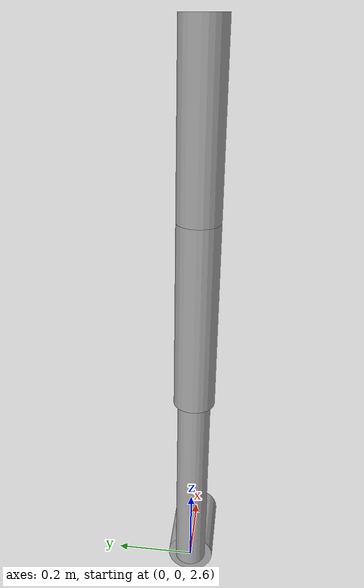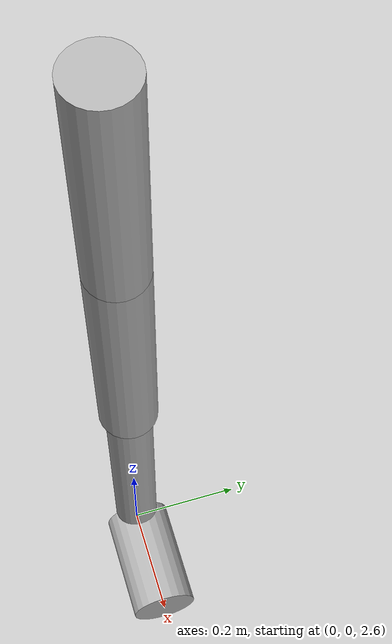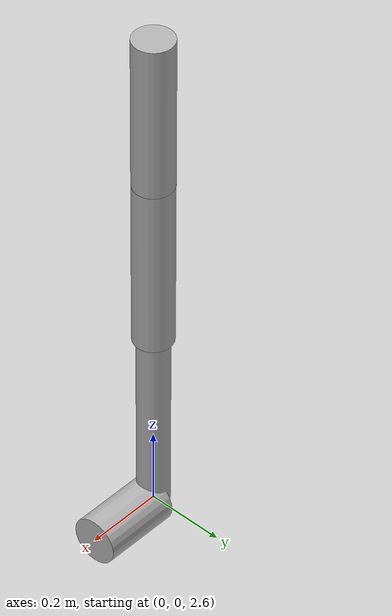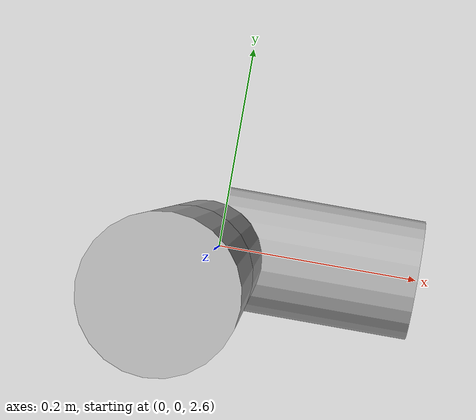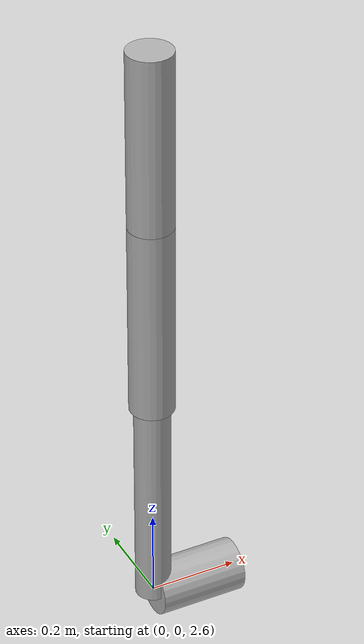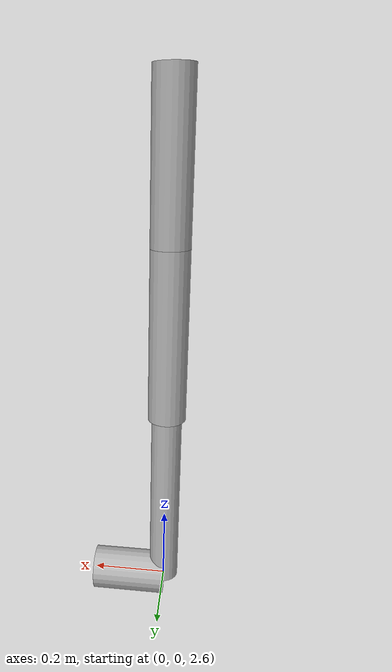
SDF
<?xml version="1.0" ?>
<sdf version="1.8">
  <world name="walker2d_v5">
    <physics name="10ms" type="ignored">
      <max_step_size>0.01</max_step_size>
      <real_time_update_rate>0</real_time_update_rate>
    </physics>
    <plugin filename="gz-sim-physics-system"           name="gz::sim::systems::Physics"/>
    <plugin filename="gz-sim-contact-system"           name="gz::sim::systems::Contact"/>
    <plugin filename="gz-sim-sensors-system"           name="gz::sim::systems::Sensors">
      <render_engine>ogre2</render_engine>
    </plugin>
    <plugin filename="gz-sim-scene-broadcaster-system" name="gz::sim::systems::SceneBroadcaster"/>
    <plugin filename="gz-sim-user-commands-system"     name="gz::sim::systems::UserCommands"/>

    <plugin
      filename="gz-sim-python-system-loader-system"
      name="gz::sim::systems::PythonSystemLoader">
      <module_name>walker2d_v5_learner</module_name>
      <agent_name>walker2d_v5</agent_name>
      <frame_skip>5</frame_skip>
    </plugin>

    <light name="sun" type="directional">
      <cast_shadows>true</cast_shadows>
      <pose>0 0 10 0 0 0</pose>
      <diffuse>0.8 0.8 0.8 1</diffuse>
      <specular>0.2 0.2 0.2 1</specular>
      <direction>-0.5 0.1 -0.9</direction>
    </light>

    <model name="ground_plane">
      <static>true</static>
      <link name="link">
        <collision name="collision">
          <geometry><plane><normal>0 0 1</normal><size>100 100</size></plane></geometry>
        </collision>
        <visual name="visual">
          <geometry><plane><normal>0 0 1</normal><size>100 100</size></plane></geometry>
          <material>
            <ambient>0.8 0.8 0.8 1</ambient>
            <diffuse>0.8 0.8 0.8 1</diffuse>
            <specular>0.8 0.8 0.8 1</specular>
          </material>
        </visual>
      </link>
    </model>

    <model name="walker2d_v5">
      <pose>0 0 1.25 0 0 0</pose>
      <include merge="true">
        <uri>package://gazebo_gymnasium_resources/models/walker2d_v5</uri>
      </include>
    </model>
  </world>
</sdf>

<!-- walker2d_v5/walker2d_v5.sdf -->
<sdf version='1.11'>
  <model name='walker2d_v5'>
    <link name='link1_1'>
      <inertial>
        <pose>0 0 0 0 0 0</pose>
        <mass>1.9999999999999999e-06</mass>
        <inertia>
          <ixx>2.0000000000000001e-09</ixx>
          <ixy>0</ixy>
          <ixz>0</ixz>
          <iyy>2.0000000000000001e-09</iyy>
          <iyz>0</iyz>
          <izz>2.0000000000000001e-09</izz>
        </inertia>
      </inertial>
    </link>
    <joint name='rootx' type='prismatic'>
      <pose relative_to='link1_1'>0 0 0 0 0 0</pose>
      <parent>link1_1</parent>
      <child>link1_2</child>
      <axis>
        <xyz>1 0 0</xyz>
        <limit>
          <lower>0</lower>
          <upper>1</upper>
          <effort>0</effort>
          <velocity>0</velocity>
        </limit>
        <dynamics>
          <damping>1</damping>
          <friction>0.0001</friction>
          <spring_reference>0</spring_reference>
          <spring_stiffness>0</spring_stiffness>
        </dynamics>
      </axis>
    </joint>
    <link name='link1_2'>
      <pose relative_to='rootx'>0 0 0 0 0 0</pose>
      <inertial>
        <pose>0 0 0 0 0 0</pose>
        <mass>9.9999999999999995e-07</mass>
        <inertia>
          <ixx>1.0000000000000001e-09</ixx>
          <ixy>0</ixy>
          <ixz>0</ixz>
          <iyy>1.0000000000000001e-09</iyy>
          <iyz>0</iyz>
          <izz>1.0000000000000001e-09</izz>
        </inertia>
      </inertial>
    </link>
    <joint name='rootz' type='prismatic'>
      <pose relative_to='link1_2'>0 0 0 0 0 0</pose>
      <parent>link1_2</parent>
      <child>link1_3</child>
      <axis>
        <xyz>0 0 1</xyz>
        <limit>
          <lower>0</lower>
          <upper>1</upper>
          <effort>0</effort>
          <velocity>0</velocity>
        </limit>
        <dynamics>
          <damping>1</damping>
          <friction>0.0001</friction>
          <spring_reference>0</spring_reference>
          <spring_stiffness>0</spring_stiffness>
        </dynamics>
      </axis>
    </joint>
    <link name='link1_3'>
      <pose relative_to='rootz'>0 0 0 0 0 0</pose>
      <inertial>
        <pose>0 0 0 0 0 0</pose>
        <mass>9.9999999999999995e-07</mass>
        <inertia>
          <ixx>1.0000000000000001e-09</ixx>
          <ixy>0</ixy>
          <ixz>0</ixz>
          <iyy>1.0000000000000001e-09</iyy>
          <iyz>0</iyz>
          <izz>1.0000000000000001e-09</izz>
        </inertia>
      </inertial>
    </link>
    <joint name='rooty' type='revolute'>
      <pose relative_to='link1_3'>0 0 1.25 0 0 0</pose>
      <parent>link1_3</parent>
      <child>link1_4</child>
      <axis>
        <xyz>0 1 0</xyz>
        <limit>
          <lower>-inf</lower>
          <upper>inf</upper>
        </limit>
        <dynamics>
          <damping>1</damping>
          <friction>0.0001</friction>
          <spring_reference>0</spring_reference>
          <spring_stiffness>0</spring_stiffness>
        </dynamics>
      </axis>
    </joint>
    <link name='link1_4'>
      <pose relative_to='rooty'>0 0 0 0 0 0</pose>
      <inertial>
        <pose>0 0 1.2499996589536531 0 0 0</pose>
        <mass>3.6651910000000001</mass>
        <inertia>
          <ixx>0.079411563499575344</ixx>
          <ixy>0</ixy>
          <ixz>0</ixz>
          <iyy>0.079411563499575344</iyy>
          <iyz>0</iyz>
          <izz>0.0061100010000000003</izz>
        </inertia>
      </inertial>
      <collision name='link1_4_fixed_joint_lump__torso_collision'>
        <pose>0 0 1.25 0 0 0</pose>
        <geometry>
          <cylinder>
            <length>0.40000000000000002</length>
            <radius>0.050000000000000003</radius>
          </cylinder>
        </geometry>
      </collision>
      <visual name='link1_4_fixed_joint_lump__torso_visual'>
        <pose>0 0 1.25 0 0 0</pose>
        <geometry>
          <cylinder>
            <length>0.40000000000000002</length>
            <radius>0.050000000000000003</radius>
          </cylinder>
        </geometry>
              <material>
          <ambient>0.5 0.5 0.5 1</ambient>
          <diffuse>0.7 0.7 0.7 1</diffuse>
          <specular>0.1 0.1 0.1 1</specular>
        </material>
      </visual>
    </link>
    <joint name='thigh_joint' type='revolute'>
      <pose relative_to='link1_4'>0 0 1.05 0 0 0</pose>
      <parent>link1_4</parent>
      <child>link1_6</child>
      <axis>
        <xyz>0 -1 0</xyz>
        <limit>
          <lower>-2.6179899999999998</lower>
          <upper>0</upper>
          <effort>0</effort>
          <velocity>0</velocity>
        </limit>
        <dynamics>
          <damping>1</damping>
          <friction>0.0001</friction>
          <spring_reference>0</spring_reference>
          <spring_stiffness>0</spring_stiffness>
        </dynamics>
      </axis>
    </joint>
    <link name='link1_6'>
      <pose relative_to='thigh_joint'>0 0 0 0 0 0</pose>
      <inertial>
        <pose>0 0 0 0 0 0</pose>
        <mass>4.0578910000000006</mass>
        <inertia>
          <ixx>0.105670001</ixx>
          <ixy>0</ixy>
          <ixz>0</ixz>
          <iyy>0.105670001</iyy>
          <iyz>0</iyz>
          <izz>0.0067600010000000007</izz>
        </inertia>
      </inertial>
      <collision name='link1_6_fixed_joint_lump__thigh_collision'>
        <pose>0 0 -0.22500000000000001 0 0 0</pose>
        <geometry>
          <cylinder>
            <length>0.45000000000000001</length>
            <radius>0.050000000000000003</radius>
          </cylinder>
        </geometry>
      </collision>
      <visual name='link1_6_fixed_joint_lump__thigh_visual'>
        <pose>0 0 -0.22500000000000001 0 0 0</pose>
        <geometry>
          <cylinder>
            <length>0.45000000000000001</length>
            <radius>0.050000000000000003</radius>
          </cylinder>
        </geometry>
              <material>
          <ambient>0.5 0.5 0.5 1</ambient>
          <diffuse>0.7 0.7 0.7 1</diffuse>
          <specular>0.1 0.1 0.1 1</specular>
        </material>
      </visual>
    </link>
    <joint name='leg_joint' type='revolute'>
      <pose relative_to='link1_6'>0 0 -0.45000000000000001 0 0 0</pose>
      <parent>link1_6</parent>
      <child>link1_8</child>
      <axis>
        <xyz>0 -1 0</xyz>
        <limit>
          <lower>-2.6179899999999998</lower>
          <upper>0</upper>
          <effort>0</effort>
          <velocity>0</velocity>
        </limit>
        <dynamics>
          <damping>1</damping>
          <friction>0.0001</friction>
          <spring_reference>0</spring_reference>
          <spring_stiffness>0</spring_stiffness>
        </dynamics>
      </axis>
    </joint>
    <link name='link1_8'>
      <pose relative_to='leg_joint'>0 0 0 0 0 0</pose>
      <inertial>
        <pose>0 0 -0.2499999101159468 0 0 0</pose>
        <mass>2.781361</mass>
        <inertia>
          <ixx>0.079450063499977547</ixx>
          <ixy>0</ixy>
          <ixz>0</ixz>
          <iyy>0.079450063499977547</iyy>
          <iyz>0</iyz>
          <izz>0.0029700009999999999</izz>
        </inertia>
      </inertial>
      <collision name='link1_8_fixed_joint_lump__leg_collision'>
        <pose>0 0 -0.25 0 0 0</pose>
        <geometry>
          <cylinder>
            <length>0.5</length>
            <radius>0.040000000000000001</radius>
          </cylinder>
        </geometry>
      </collision>
      <visual name='link1_8_fixed_joint_lump__leg_visual'>
        <pose>0 0 -0.25 0 0 0</pose>
        <geometry>
          <cylinder>
            <length>0.5</length>
            <radius>0.040000000000000001</radius>
          </cylinder>
        </geometry>
              <material>
          <ambient>0.5 0.5 0.5 1</ambient>
          <diffuse>0.7 0.7 0.7 1</diffuse>
          <specular>0.1 0.1 0.1 1</specular>
        </material>
      </visual>
    </link>
    <joint name='foot_joint' type='revolute'>
      <pose relative_to='link1_8'>0 0 -0.5 0 0 0</pose>
      <parent>link1_8</parent>
      <child>link1_10</child>
      <axis>
        <xyz>0 -1 0</xyz>
        <limit>
          <lower>-0.78539999999999999</lower>
          <upper>0.78539999999999999</upper>
          <effort>0</effort>
          <velocity>0</velocity>
        </limit>
        <dynamics>
          <damping>1</damping>
          <friction>0.0001</friction>
          <spring_reference>0</spring_reference>
          <spring_stiffness>0</spring_stiffness>
        </dynamics>
      </axis>
    </joint>
    <link name='link1_10'>
      <pose relative_to='foot_joint'>0 0 0 0 0 0</pose>
      <inertial>
        <pose>0.19999993684338829 0 -0.09999996842169416 0 0 0</pose>
        <mass>3.166731</mass>
        <inertia>
          <ixx>0.0076000109999968526</ixx>
          <ixy>0</ixy>
          <ixz>1.9999993702835009e-08</ixz>
          <iyy>0.030820050999984219</iyy>
          <iyz>0</iyz>
          <izz>0.030820040999987391</izz>
        </inertia>
      </inertial>
      <collision name='link1_10_fixed_joint_lump__foot_collision'>
        <pose>0.10000000000000001 0 0 0 -1.5707963267948966 0</pose>
        <geometry>
          <cylinder>
            <length>0.20000000000000001</length>
            <radius>0.059999999999999998</radius>
          </cylinder>
        </geometry>
      </collision>
      <visual name='link1_10_fixed_joint_lump__foot_visual'>
        <pose>0.10000000000000001 0 0 0 -1.5707963267948966 0</pose>
        <geometry>
          <cylinder>
            <length>0.20000000000000001</length>
            <radius>0.059999999999999998</radius>
          </cylinder>
        </geometry>
              <material>
          <ambient>0.5 0.5 0.5 1</ambient>
          <diffuse>0.7 0.7 0.7 1</diffuse>
          <specular>0.1 0.1 0.1 1</specular>
        </material>
      </visual>
    </link>
    <joint name='thigh_left_joint' type='revolute'>
      <pose relative_to='link1_4'>0 0 1.05 0 0 0</pose>
      <parent>link1_4</parent>
      <child>link1_12</child>
      <axis>
        <xyz>0 -1 0</xyz>
        <limit>
          <lower>-2.6179899999999998</lower>
          <upper>0</upper>
          <effort>0</effort>
          <velocity>0</velocity>
        </limit>
        <dynamics>
          <damping>1</damping>
          <friction>0.0001</friction>
          <spring_reference>0</spring_reference>
          <spring_stiffness>0</spring_stiffness>
        </dynamics>
      </axis>
    </joint>
    <link name='link1_12'>
      <pose relative_to='thigh_left_joint'>0 0 0 0 0 0</pose>
      <inertial>
        <pose>0 0 0 0 0 0</pose>
        <mass>4.0578910000000006</mass>
        <inertia>
          <ixx>0.105670001</ixx>
          <ixy>0</ixy>
          <ixz>0</ixz>
          <iyy>0.105670001</iyy>
          <iyz>0</iyz>
          <izz>0.0067600010000000007</izz>
        </inertia>
      </inertial>
      <collision name='link1_12_fixed_joint_lump__thigh_left_collision'>
        <pose>0 0 -0.22500000000000001 0 0 0</pose>
        <geometry>
          <cylinder>
            <length>0.45000000000000001</length>
            <radius>0.050000000000000003</radius>
          </cylinder>
        </geometry>
      </collision>
      <visual name='link1_12_fixed_joint_lump__thigh_left_visual'>
        <pose>0 0 -0.22500000000000001 0 0 0</pose>
        <geometry>
          <cylinder>
            <length>0.45000000000000001</length>
            <radius>0.050000000000000003</radius>
          </cylinder>
        </geometry>
              <material>
          <ambient>0.5 0.5 0.5 1</ambient>
          <diffuse>0.7 0.7 0.7 1</diffuse>
          <specular>0.1 0.1 0.1 1</specular>
        </material>
      </visual>
    </link>
    <joint name='leg_left_joint' type='revolute'>
      <pose relative_to='link1_12'>0 0 -0.45000000000000001 0 0 0</pose>
      <parent>link1_12</parent>
      <child>link1_14</child>
      <axis>
        <xyz>0 -1 0</xyz>
        <limit>
          <lower>-2.6179899999999998</lower>
          <upper>0</upper>
          <effort>0</effort>
          <velocity>0</velocity>
        </limit>
        <dynamics>
          <damping>1</damping>
          <friction>0.0001</friction>
          <spring_reference>0</spring_reference>
          <spring_stiffness>0</spring_stiffness>
        </dynamics>
      </axis>
    </joint>
    <link name='link1_14'>
      <pose relative_to='leg_left_joint'>0 0 0 0 0 0</pose>
      <inertial>
        <pose>0 0 -0.2499999101159468 0 0 0</pose>
        <mass>2.781361</mass>
        <inertia>
          <ixx>0.079450063499977547</ixx>
          <ixy>0</ixy>
          <ixz>0</ixz>
          <iyy>0.079450063499977547</iyy>
          <iyz>0</iyz>
          <izz>0.0029700009999999999</izz>
        </inertia>
      </inertial>
      <collision name='link1_14_fixed_joint_lump__leg_left_collision'>
        <pose>0 0 -0.25 0 0 0</pose>
        <geometry>
          <cylinder>
            <length>0.5</length>
            <radius>0.040000000000000001</radius>
          </cylinder>
        </geometry>
      </collision>
      <visual name='link1_14_fixed_joint_lump__leg_left_visual'>
        <pose>0 0 -0.25 0 0 0</pose>
        <geometry>
          <cylinder>
            <length>0.5</length>
            <radius>0.040000000000000001</radius>
          </cylinder>
        </geometry>
              <material>
          <ambient>0.5 0.5 0.5 1</ambient>
          <diffuse>0.7 0.7 0.7 1</diffuse>
          <specular>0.1 0.1 0.1 1</specular>
        </material>
      </visual>
    </link>
    <joint name='foot_left_joint' type='revolute'>
      <pose relative_to='link1_14'>0 0 -0.5 0 0 0</pose>
      <parent>link1_14</parent>
      <child>link1_16</child>
      <axis>
        <xyz>0 -1 0</xyz>
        <limit>
          <lower>-0.78539999999999999</lower>
          <upper>0.78539999999999999</upper>
          <effort>0</effort>
          <velocity>0</velocity>
        </limit>
        <dynamics>
          <damping>1</damping>
          <friction>0.0001</friction>
          <spring_reference>0</spring_reference>
          <spring_stiffness>0</spring_stiffness>
        </dynamics>
      </axis>
    </joint>
    <link name='link1_16'>
      <pose relative_to='foot_left_joint'>0 0 0 0 0 0</pose>
      <inertial>
        <pose>0.19999993684338829 0 -0.09999996842169416 0 0 0</pose>
        <mass>3.166731</mass>
        <inertia>
          <ixx>0.0076000109999968526</ixx>
          <ixy>0</ixy>
          <ixz>1.9999993702835009e-08</ixz>
          <iyy>0.030820050999984219</iyy>
          <iyz>0</iyz>
          <izz>0.030820040999987391</izz>
        </inertia>
      </inertial>
      <collision name='link1_16_fixed_joint_lump__foot_left_collision'>
        <pose>0.10000000000000001 0 0 0 -1.5707963267948966 0</pose>
        <geometry>
          <cylinder>
            <length>0.20000000000000001</length>
            <radius>0.059999999999999998</radius>
          </cylinder>
        </geometry>
      </collision>
      <visual name='link1_16_fixed_joint_lump__foot_left_visual'>
        <pose>0.10000000000000001 0 0 0 -1.5707963267948966 0</pose>
        <geometry>
          <cylinder>
            <length>0.20000000000000001</length>
            <radius>0.059999999999999998</radius>
          </cylinder>
        </geometry>
              <material>
          <ambient>0.5 0.5 0.5 1</ambient>
          <diffuse>0.7 0.7 0.7 1</diffuse>
          <specular>0.1 0.1 0.1 1</specular>
        </material>
      </visual>
    </link>

</model>
</sdf>
